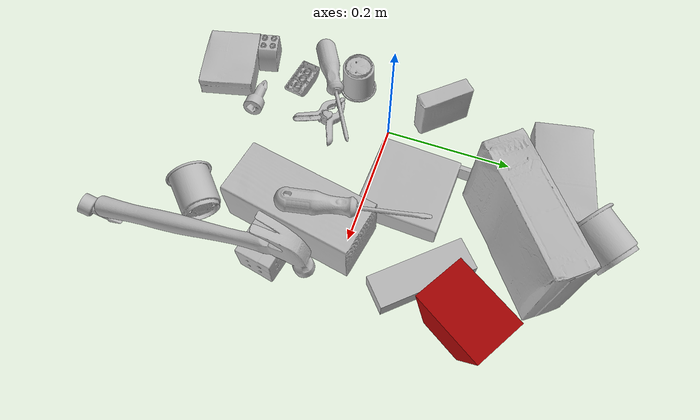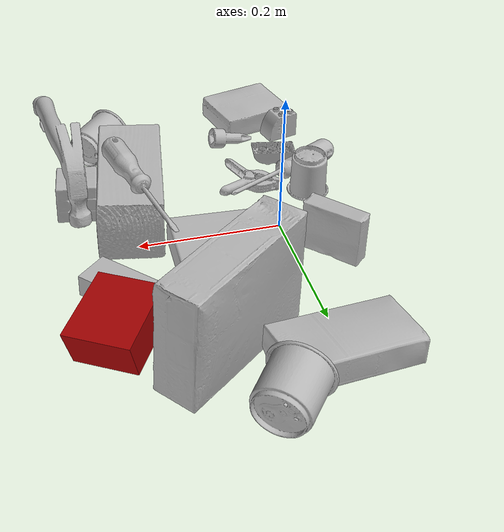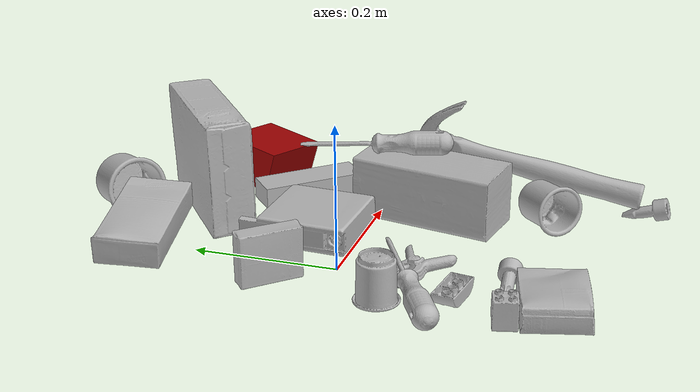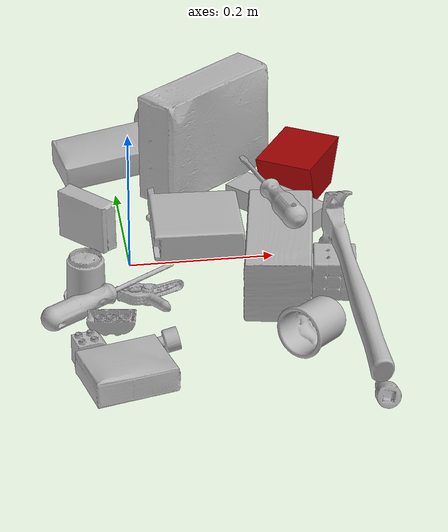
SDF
<sdf version="1.4">
  <world name="default">
    <light name="light1" type="point">
      <pose>0 0 1 0 0 0</pose>
      <diffuse>3 3 3 1</diffuse>
      <specular>3 3 3 1</specular>
    </light>
    <light name="light2" type="point">
      <pose>0 0.5 2 0 0 0</pose>
      <diffuse>1 1 1 1</diffuse>
      <specular>1 1 1 1</specular>
    </light>
    <light name="light3" type="point">
      <pose>0 0.5 2 0 0 0</pose>
      <diffuse>3 3 3 1</diffuse>
      <specular>3 3 3 1</specular>
    </light>
    <scene>
      <ambient>0.7 0.7 0.7</ambient>
    </scene>
    <model name="box21">
      <link name="link_box21">
        <collision name="default">
          <geometry>
            <mesh>
              <uri>model://cracker_box/collision_meshes/collision.obj</uri>
              <scale>1.0 1.0 1.0</scale>
            </mesh>
          </geometry>
          <surface>
            <friction>
              <ode>
                <mu>0.5</mu>
                <mu2>0.5</mu2>
              </ode>
            </friction>
          <contact>
        <ode>
            <max_vel>0</max_vel>
            <min_depth>0.0001</min_depth>
            <kp>1e8</kp>
        </ode>
    </contact></surface>
        </collision>
        <visual name="default">
          <geometry>
            <mesh>
              <uri>model://cracker_box/visual_meshes/visual.dae</uri>
              <scale>1.0 1.0 1.0</scale>
            </mesh>
          </geometry>
        </visual>
        <inertial>
          <mass>1.1849639415740967</mass>
          <pose>0.0009464144241064787 0.0002543424488976598 -0.0017029534792527556 -0.0003162077682631379 -0.011106487737543453 0.002546794536785776</pose>
          <inertia>
            <ixx>0.0030140192</ixx>
            <iyy>0.004976738</iyy>
            <izz>0.007102261</izz>
            <ixy>0</ixy>
            <ixz>0</ixz>
            <iyz>0</iyz>
          </inertia>
        </inertial>
      </link>
      <pose>0.13683950901031494 0.23127375543117523 0.08175767958164215 1.5452337408506513 0.009040273287730882 0.6793554831549087</pose>
    </model>
    <model name="box22">
      <link name="link_box22">
        <collision name="default">
          <geometry>
            <mesh>
              <uri>model://rubiks_cube/collision_meshes/collision.obj</uri>
              <scale>1.0 1.0 1.0</scale>
            </mesh>
          </geometry>
          <surface>
            <friction>
              <ode>
                <mu>0.5</mu>
                <mu2>0.5</mu2>
              </ode>
            </friction>
          <contact>
        <ode>
            <max_vel>0</max_vel>
            <min_depth>0.0001</min_depth>
            <kp>1e8</kp>
        </ode>
    </contact></surface>
        </collision>
        <visual name="default">
          <geometry>
            <mesh>
              <uri>model://rubiks_cube/visual_meshes/visual.dae</uri>
              <scale>1.0 1.0 1.0</scale>
            </mesh>
          </geometry>
        </visual>
        <inertial>
          <mass>0.10796652734279633</mass>
          <pose>2.6721041649580002e-05 5.2569666877388954e-05 -7.264316082000732e-06 -0.054672548620525036 -0.09813983330627576 -0.03445544186372042</pose>
          <inertia>
            <ixx>5.965876e-05</ixx>
            <iyy>5.9380527e-05</iyy>
            <izz>6.0153117e-05</izz>
            <ixy>0</ixy>
            <ixz>0</ixz>
            <iyz>0</iyz>
          </inertia>
        </inertial>
      </link>
      <pose>0.26626187562942505 -0.10348903387784958 0.029059574007987976 -3.1341264603700636 0.010894069910322096 -0.19514493605306718</pose>
    </model>
    <model name="box23">
      <link name="link_box23">
        <collision name="default">
          <geometry>
            <mesh>
              <uri>model://sugar_box/collision_meshes/collision.obj</uri>
              <scale>1.0 1.0 1.0</scale>
            </mesh>
          </geometry>
          <surface>
            <friction>
              <ode>
                <mu>0.5</mu>
                <mu2>0.5</mu2>
              </ode>
            </friction>
          <contact>
        <ode>
            <max_vel>0</max_vel>
            <min_depth>0.0001</min_depth>
            <kp>1e8</kp>
        </ode>
    </contact></surface>
        </collision>
        <visual name="default">
          <geometry>
            <mesh>
              <uri>model://sugar_box/visual_meshes/visual.dae</uri>
              <scale>1.0 1.0 1.0</scale>
            </mesh>
          </geometry>
        </visual>
        <inertial>
          <mass>0.8519012928009033</mass>
          <pose>0.0010343727190047503 3.8491099985549226e-05 -0.0003636480832938105 -0.00040462606756407727 0.0010506635218583888 0.002615378789044619</pose>
          <inertia>
            <ixx>0.00070980185</ixx>
            <iyy>0.0022942254</iyy>
            <izz>0.0027464617</izz>
            <ixy>0</ixy>
            <ixz>0</ixz>
            <iyz>0</iyz>
          </inertia>
        </inertial>
      </link>
      <pose>0.009078282862901688 0.27958041429519653 0.028310736641287804 3.1008046027964316 0.08326547200468341 -2.963363940777605</pose>
    </model>
    <model name="cup1">
      <link name="link_cup1">
        <collision name="default">
          <geometry>
            <mesh>
              <uri>model://b_cups/collision_meshes/collision.obj</uri>
              <scale>1.0 1.0 1.0</scale>
            </mesh>
          </geometry>
          <surface>
            <friction>
              <ode>
                <mu>0.5</mu>
                <mu2>0.5</mu2>
              </ode>
            </friction>
          <contact>
        <ode>
            <max_vel>0</max_vel>
            <min_depth>0.0001</min_depth>
            <kp>1e8</kp>
        </ode>
    </contact></surface>
        </collision>
        <visual name="default">
          <geometry>
            <mesh>
              <uri>model://b_cups/visual_meshes/visual.dae</uri>
              <scale>1.0 1.0 1.0</scale>
            </mesh>
          </geometry>
        </visual>
        <inertial>
          <mass>0.025879299268126488</mass>
          <pose>0.0005181999877095222 0.0018058597343042493 -0.0013381816679611802 0.11356295314662153 0.03872538879904025 -0.34569789869984097</pose>
          <inertia>
            <ixx>1.6939814e-05</ixx>
            <iyy>1.6618207e-05</iyy>
            <izz>1.4254532e-05</izz>
            <ixy>0</ixy>
            <ixz>0</ixz>
            <iyz>0</iyz>
          </inertia>
        </inertial>
      </link>
      <pose>-0.06741157919168472 -0.07491599023342133 0.032155126333236694 3.141586208690046 -5.87216150635835e-07 2.6325987427734225</pose>
    </model>
    <model name="cup2">
      <link name="link_cup2">
        <collision name="default">
          <geometry>
            <mesh>
              <uri>model://g_cups/collision_meshes/collision.obj</uri>
              <scale>1.0 1.0 1.0</scale>
            </mesh>
          </geometry>
          <surface>
            <friction>
              <ode>
                <mu>0.5</mu>
                <mu2>0.5</mu2>
              </ode>
            </friction>
          <contact>
        <ode>
            <max_vel>0</max_vel>
            <min_depth>0.0001</min_depth>
            <kp>1e8</kp>
        </ode>
    </contact></surface>
        </collision>
        <visual name="default">
          <geometry>
            <mesh>
              <uri>model://g_cups/visual_meshes/visual.dae</uri>
              <scale>1.0 1.0 1.0</scale>
            </mesh>
          </geometry>
        </visual>
        <inertial>
          <mass>0.06683293730020523</mass>
          <pose>-0.0007946278783492744 -4.206685844110325e-05 -0.002132937777787447 -0.21382591566164685 -0.31410327542238353 0.3112138520870617</pose>
          <inertia>
            <ixx>7.8009005e-05</ixx>
            <iyy>7.7743636e-05</iyy>
            <izz>8.080389e-05</izz>
            <ixy>0</ixy>
            <ixz>0</ixz>
            <iyz>0</iyz>
          </inertia>
        </inertial>
      </link>
      <pose>0.09995248168706894 0.3494326174259186 0.0401541106402874 -1.398165622704225 0.8639481043703163 2.587331238368174</pose>
    </model>
    <model name="box11">
      <link name="link_box11">
        <collision name="default">
          <geometry>
            <mesh>
              <uri>model://wood_block/collision_meshes/collision.obj</uri>
              <scale>1.0 1.0 1.0</scale>
            </mesh>
          </geometry>
          <surface>
            <friction>
              <ode>
                <mu>0.5</mu>
                <mu2>0.5</mu2>
              </ode>
            </friction>
          <contact>
        <ode>
            <max_vel>0</max_vel>
            <min_depth>0.0001</min_depth>
            <kp>1e8</kp>
        </ode>
    </contact></surface>
        </collision>
        <visual name="default">
          <geometry>
            <mesh>
              <uri>model://wood_block/visual_meshes/visual.dae</uri>
              <scale>1.0 1.0 1.0</scale>
            </mesh>
          </geometry>
        </visual>
        <inertial>
          <mass>0.9227498173713684</mass>
          <pose>-5.813315056002466e-06 -0.0005708094104193151 0.0002640858292579651 -0.05221074847543751 -0.005192695234575722 -0.00686137748598008</pose>
          <inertia>
            <ixx>0.001234779</ixx>
            <iyy>0.0039006667</iyy>
            <izz>0.0038860766</izz>
            <ixy>0</ixy>
            <ixz>0</ixz>
            <iyz>0</iyz>
          </inertia>
        </inertial>
      </link>
      <pose>0.1953711062669754 -0.0746496394276619 0.04570049047470093 1.5681445050445162 -0.006937324776994106 1.393193296071758</pose>
    </model>
    <model name="box12">
      <link name="link_box12">
        <collision name="default">
          <geometry>
            <mesh>
              <uri>model://pudding_box/collision_meshes/collision.obj</uri>
              <scale>1.0 1.0 1.0</scale>
            </mesh>
          </geometry>
          <surface>
            <friction>
              <ode>
                <mu>0.5</mu>
                <mu2>0.5</mu2>
              </ode>
            </friction>
          <contact>
        <ode>
            <max_vel>0</max_vel>
            <min_depth>0.0001</min_depth>
            <kp>1e8</kp>
        </ode>
    </contact></surface>
        </collision>
        <visual name="default">
          <geometry>
            <mesh>
              <uri>model://pudding_box/visual_meshes/visual.dae</uri>
              <scale>1.0 1.0 1.0</scale>
            </mesh>
          </geometry>
        </visual>
        <inertial>
          <mass>0.23326139152050018</mass>
          <pose>0.0004894821904599667 0.0008067885646596551 -0.0005188827635720372 0.0052131032034861725 -0.006603797335681708 0.02007982515858456</pose>
          <inertia>
            <ixx>0.00026369</ixx>
            <iyy>0.00017741251</iyy>
            <izz>0.00038940719</izz>
            <ixy>0</ixy>
            <ixz>0</ixz>
            <iyz>0</iyz>
          </inertia>
        </inertial>
      </link>
      <pose>-0.034139811992645264 -0.29098933935165405 0.01866610161960125 3.1353353810073537 -0.022161653098157017 -1.3259653052853042</pose>
    </model>
    <model name="box13">
      <link name="link_box13">
        <collision name="default">
          <geometry>
            <mesh>
              <uri>model://gelatin_box/collision_meshes/collision.obj</uri>
              <scale>1.0 1.0 1.0</scale>
            </mesh>
          </geometry>
          <surface>
            <friction>
              <ode>
                <mu>0.5</mu>
                <mu2>0.5</mu2>
              </ode>
            </friction>
          <contact>
        <ode>
            <max_vel>0</max_vel>
            <min_depth>0.0001</min_depth>
            <kp>1e8</kp>
        </ode>
    </contact></surface>
        </collision>
        <visual name="default">
          <geometry>
            <mesh>
              <uri>model://gelatin_box/visual_meshes/visual.dae</uri>
              <scale>1.0 1.0 1.0</scale>
            </mesh>
          </geometry>
        </visual>
        <inertial>
          <mass>0.0997389405965805</mass>
          <pose>0.0004319618456065655 0.00011156871187267825 -0.0003640321083366871 -0.001050372080915675 -0.004755817759010177 0.0164405576084854</pose>
          <inertia>
            <ixx>7.040755e-05</ixx>
            <iyy>5.0291743e-05</iyy>
            <izz>0.000107175976</izz>
            <ixy>0</ixy>
            <ixz>0</ixz>
            <iyz>0</iyz>
          </inertia>
        </inertial>
      </link>
      <pose>-0.05138615891337395 0.07356216013431549 0.036736223846673965 -0.5860887859934936 1.5473903341242026 0.1485084248488281</pose>
    </model>
    <model name="box14">
      <link name="link_box14">
        <collision name="default">
          <geometry>
            <mesh>
              <uri>model://jenga/collision_meshes/collision.obj</uri>
              <scale>1.0 1.0 1.0</scale>
            </mesh>
          </geometry>
          <surface>
            <friction>
              <ode>
                <mu>0.5</mu>
                <mu2>0.5</mu2>
              </ode>
            </friction>
          <contact>
        <ode>
            <max_vel>0</max_vel>
            <min_depth>0.0001</min_depth>
            <kp>1e8</kp>
        </ode>
    </contact></surface>
        </collision>
        <visual name="default">
          <geometry>
            <mesh>
              <uri>model://jenga/visual_meshes/visual.dae</uri>
              <scale>1.0 1.0 1.0</scale>
            </mesh>
          </geometry>
        </visual>
        <inertial>
          <mass>0.23366476595401764</mass>
          <pose>-2.502855807051674e-07 -0.0001025000965455547 -4.092339804628864e-05 0.0 -7.34215461761844e-07 0.0</pose>
          <inertia>
            <ixx>6.466071e-05</ixx>
            <iyy>0.0004381392</iyy>
            <izz>0.00046775083</izz>
            <ixy>0</ixy>
            <ixz>0</ixz>
            <iyz>0</iyz>
          </inertia>
        </inertial>
      </link>
      <pose>0.22482314705848694 0.11949235200881958 0.014999985694885254 3.141592634504665 1.6440268426656176e-07 2.303933335957622</pose>
    </model>
    <model name="cup15">
      <link name="link_cup15">
        <collision name="default">
          <geometry>
            <mesh>
              <uri>model://d_cups/collision_meshes/collision.obj</uri>
              <scale>1.0 1.0 1.0</scale>
            </mesh>
          </geometry>
          <surface>
            <friction>
              <ode>
                <mu>0.5</mu>
                <mu2>0.5</mu2>
              </ode>
            </friction>
          <contact>
        <ode>
            <max_vel>0</max_vel>
            <min_depth>0.0001</min_depth>
            <kp>1e8</kp>
        </ode>
    </contact></surface>
        </collision>
        <visual name="default">
          <geometry>
            <mesh>
              <uri>model://d_cups/visual_meshes/visual.dae</uri>
              <scale>1.0 1.0 1.0</scale>
            </mesh>
          </geometry>
        </visual>
        <inertial>
          <mass>0.05354860797524452</mass>
          <pose>0.000806806143373251 0.001911740517243743 -0.002266649389639497 0.240133395025133 -0.24708811164710584 0.5942101592185234</pose>
          <inertia>
            <ixx>4.4832785e-05</ixx>
            <iyy>4.470303e-05</iyy>
            <izz>4.0581297e-05</izz>
            <ixy>0</ixy>
            <ixz>0</ixz>
            <iyz>0</iyz>
          </inertia>
        </inertial>
      </link>
      <pose>0.21505117416381836 -0.23618467152118683 0.03248865529894829 -1.4814860235842588 -0.2972533597592588 2.3005830592396026</pose>
    </model>
    <model name="toy1">
      <link name="link_toy1">
        <collision name="default">
          <geometry>
            <mesh>
              <uri>model://d_toy_airplane/collision_meshes/collision.obj</uri>
              <scale>1.0 1.0 1.0</scale>
            </mesh>
          </geometry>
          <surface>
            <friction>
              <ode>
                <mu>0.5</mu>
                <mu2>0.5</mu2>
              </ode>
            </friction>
          <contact>
        <ode>
            <max_vel>0</max_vel>
            <min_depth>0.0001</min_depth>
            <kp>1e8</kp>
        </ode>
    </contact></surface>
        </collision>
        <visual name="default">
          <geometry>
            <mesh>
              <uri>model://d_toy_airplane/visual_meshes/visual.dae</uri>
              <scale>1.0 1.0 1.0</scale>
            </mesh>
          </geometry>
        </visual>
        <inertial>
          <mass>0.01055214088410139</mass>
          <pose>9.410294296685606e-05 -5.809328649775125e-05 -0.011728094890713692 0.00026701540047293157 0.004678982739479609 0.5194739606880012</pose>
          <inertia>
            <ixx>3.1633276e-06</ixx>
            <iyy>3.1657132e-06</iyy>
            <izz>9.55029e-07</izz>
            <ixy>0</ixy>
            <ixz>0</ixz>
            <iyz>0</iyz>
          </inertia>
        </inertial>
      </link>
      <pose>0.007323484867811203 -0.22516506910324097 0.0120384581387043 -1.8698584404817034 0.8596818870152134 1.4323064444406222</pose>
    </model>
    <model name="toy2">
      <link name="link_toy2">
        <collision name="default">
          <geometry>
            <mesh>
              <uri>model://d_lego_duplo/collision_meshes/collision.obj</uri>
              <scale>1.0 1.0 1.0</scale>
            </mesh>
          </geometry>
          <surface>
            <friction>
              <ode>
                <mu>0.5</mu>
                <mu2>0.5</mu2>
              </ode>
            </friction>
          <contact>
        <ode>
            <max_vel>0</max_vel>
            <min_depth>0.0001</min_depth>
            <kp>1e8</kp>
        </ode>
    </contact></surface>
        </collision>
        <visual name="default">
          <geometry>
            <mesh>
              <uri>model://d_lego_duplo/visual_meshes/visual.dae</uri>
              <scale>1.0 1.0 1.0</scale>
            </mesh>
          </geometry>
        </visual>
        <inertial>
          <mass>0.039816875010728836</mass>
          <pose>0.0028305640444159508 0.00016366131603717804 0.000858980929479003 0.08010950238605453 -0.3835521959243733 0.0010296761363168562</pose>
          <inertia>
            <ixx>7.70796e-06</ixx>
            <iyy>1.0939688e-05</iyy>
            <izz>1.0549791e-05</izz>
            <ixy>0</ixy>
            <ixz>0</ixz>
            <iyz>0</iyz>
          </inertia>
        </inertial>
      </link>
      <pose>-0.07341291010379791 -0.238082617521286 0.021740566939115524 3.449092739221226e-05 4.890546420883809e-06 -2.898874072265709</pose>
    </model>
    <model name="toy3">
      <link name="link_toy3">
        <collision name="default">
          <geometry>
            <mesh>
              <uri>model://nine_hole_peg_test/collision_meshes/collision.obj</uri>
              <scale>1.0 1.0 1.0</scale>
            </mesh>
          </geometry>
          <surface>
            <friction>
              <ode>
                <mu>0.5</mu>
                <mu2>0.5</mu2>
              </ode>
            </friction>
          <contact>
        <ode>
            <max_vel>0</max_vel>
            <min_depth>0.0001</min_depth>
            <kp>1e8</kp>
        </ode>
    </contact></surface>
        </collision>
        <visual name="default">
          <geometry>
            <mesh>
              <uri>model://nine_hole_peg_test/visual_meshes/visual.dae</uri>
              <scale>1.0 1.0 1.0</scale>
            </mesh>
          </geometry>
        </visual>
        <inertial>
          <mass>0.7048692107200623</mass>
          <pose>-0.0046173869632184505 -0.009647614322602749 2.6460689696250483e-05 -0.0014666794682547425 0.0007194190753660851 -0.6342416580414534</pose>
          <inertia>
            <ixx>0.0011021789</ixx>
            <iyy>0.0010290928</iyy>
            <izz>0.0019313421</izz>
            <ixy>0</ixy>
            <ixz>0</ixz>
            <iyz>0</iyz>
          </inertia>
        </inertial>
      </link>
      <pose>0.09526868909597397 0.07333166152238846 0.020791009068489075 3.1415926534873404 -1.4529914267214949e-08 3.091588477352526</pose>
    </model>
    <model name="toy4">
      <link name="link_toy4">
        <collision name="default">
          <geometry>
            <mesh>
              <uri>model://a_lego_duplo/collision_meshes/collision.obj</uri>
              <scale>1.0 1.0 1.0</scale>
            </mesh>
          </geometry>
          <surface>
            <friction>
              <ode>
                <mu>0.5</mu>
                <mu2>0.5</mu2>
              </ode>
            </friction>
          <contact>
        <ode>
            <max_vel>0</max_vel>
            <min_depth>0.0001</min_depth>
            <kp>1e8</kp>
        </ode>
    </contact></surface>
        </collision>
        <visual name="default">
          <geometry>
            <mesh>
              <uri>model://a_lego_duplo/visual_meshes/visual.dae</uri>
              <scale>1.0 1.0 1.0</scale>
            </mesh>
          </geometry>
        </visual>
        <inertial>
          <mass>0.021006127819418907</mass>
          <pose>-0.00011337678006384522 0.00018517556600272655 0.0003692602913361043 -0.014116980161978756 -0.00012565077681184441 6.142327078429463e-05</pose>
          <inertia>
            <ixx>2.6931523e-06</ixx>
            <iyy>6.033251e-06</iyy>
            <izz>7.473524e-06</izz>
            <ixy>0</ixy>
            <ixz>0</ixz>
            <iyz>0</iyz>
          </inertia>
        </inertial>
      </link>
      <pose>-0.041721343994140625 -0.16539831459522247 0.01212474424391985 -3.141330026703025 -0.01554936597369226 -0.16336519351003326</pose>
    </model>
    <model name="toy5">
      <link name="link_toy5">
        <collision name="default">
          <geometry>
            <mesh>
              <uri>model://e_toy_airplane/collision_meshes/collision.obj</uri>
              <scale>1.0 1.0 1.0</scale>
            </mesh>
          </geometry>
          <surface>
            <friction>
              <ode>
                <mu>0.5</mu>
                <mu2>0.5</mu2>
              </ode>
            </friction>
          <contact>
        <ode>
            <max_vel>0</max_vel>
            <min_depth>0.0001</min_depth>
            <kp>1e8</kp>
        </ode>
    </contact></surface>
        </collision>
        <visual name="default">
          <geometry>
            <mesh>
              <uri>model://e_toy_airplane/visual_meshes/visual.dae</uri>
              <scale>1.0 1.0 1.0</scale>
            </mesh>
          </geometry>
        </visual>
        <inertial>
          <mass>0.02451101876795292</mass>
          <pose>0.00011740468471543863 -2.248291639261879e-05 -0.011187203228473663 0.00551850103187323 0.009228285956806933 0.150416364683818</pose>
          <inertia>
            <ixx>7.481042e-06</ixx>
            <iyy>7.4045165e-06</iyy>
            <izz>2.2483475e-06</izz>
            <ixy>0</ixy>
            <ixz>0</ixz>
            <iyz>0</iyz>
          </inertia>
        </inertial>
      </link>
      <pose>0.28219857811927795 -0.3643616735935211 0.010725824162364006 -2.6002757131548213 1.244904770648724 -1.0315754839438547</pose>
    </model>
    <model name="toy6">
      <link name="link_toy6">
        <collision name="default">
          <geometry>
            <mesh>
              <uri>model://prism/collision_meshes/collision.obj</uri>
              <scale>1.0 1.0 1.0</scale>
            </mesh>
          </geometry>
          <surface>
            <friction>
              <ode>
                <mu>0.5</mu>
                <mu2>0.5</mu2>
              </ode>
            </friction>
          <contact>
        <ode>
            <max_vel>0</max_vel>
            <min_depth>0.0001</min_depth>
            <kp>1e8</kp>
        </ode>
    </contact></surface>
        </collision>
        <visual name="default">
          <geometry>
            <mesh>
              <uri>model://prism/visual_meshes/visual.dae</uri>
              <scale>1.0 1.0 1.0</scale>
            </mesh>
          </geometry>
        </visual>
        <inertial>
          <mass>0.639074981212616</mass>
          <pose>-9.85359656624496e-05 -4.96157269935793e-07 -0.003386910306289792 0.0 0.006559180766136186 0.0</pose>
          <inertia>
            <ixx>0.0005767573</ixx>
            <iyy>0.0006970186</iyy>
            <izz>0.0008537644</izz>
            <ixy>0</ixy>
            <ixz>0</ixz>
            <iyz>0</iyz>
          </inertia>
        </inertial>
      </link>
      <pose>0.2666991651058197 0.19231578707695007 0.031446874141693115 3.141592642209632 0.01664676142910908 1.025832494743992</pose>
    </model>
    <model name="hardware1">
      <link name="link_hardware1">
        <collision name="default">
          <geometry>
            <mesh>
              <uri>model://medium_clamp/collision_meshes/collision.obj</uri>
              <scale>1.0 1.0 1.0</scale>
            </mesh>
          </geometry>
          <surface>
            <friction>
              <ode>
                <mu>0.5</mu>
                <mu2>0.5</mu2>
              </ode>
            </friction>
          <contact>
        <ode>
            <max_vel>0</max_vel>
            <min_depth>0.0001</min_depth>
            <kp>1e8</kp>
        </ode>
    </contact></surface>
        </collision>
        <visual name="default">
          <geometry>
            <mesh>
              <uri>model://medium_clamp/visual_meshes/visual.dae</uri>
              <scale>1.0 1.0 1.0</scale>
            </mesh>
          </geometry>
        </visual>
        <inertial>
          <mass>0.01437164656817913</mass>
          <pose>0.005390993785113096 0.00039532355731353164 -0.0001222158025484532 -0.001226922255807767 0.0025845058861846287 0.038207728721457376</pose>
          <inertia>
            <ixx>3.9153533e-06</ixx>
            <iyy>5.697947e-06</iyy>
            <izz>8.776544e-06</izz>
            <ixy>0</ixy>
            <ixz>0</ixz>
            <iyz>0</iyz>
          </inertia>
        </inertial>
      </link>
      <pose>0.01528062392026186 -0.10263190418481827 0.013541639782488346 0.07593002063265834 0.08568977759969529 2.7794984766382953</pose>
    </model>
    <model name="hardware2">
      <link name="link_hardware2">
        <collision name="default">
          <geometry>
            <mesh>
              <uri>model://hammer/collision_meshes/collision.obj</uri>
              <scale>1.0 1.0 1.0</scale>
            </mesh>
          </geometry>
          <surface>
            <friction>
              <ode>
                <mu>0.5</mu>
                <mu2>0.5</mu2>
              </ode>
            </friction>
          <contact>
        <ode>
            <max_vel>0</max_vel>
            <min_depth>0.0001</min_depth>
            <kp>1e8</kp>
        </ode>
    </contact></surface>
        </collision>
        <visual name="default">
          <geometry>
            <mesh>
              <uri>model://hammer/visual_meshes/visual.dae</uri>
              <scale>1.0 1.0 1.0</scale>
            </mesh>
          </geometry>
        </visual>
        <inertial>
          <mass>0.29233166575431824</mass>
          <pose>0.009415771812200546 -0.011892357841134071 -0.0001235063245985657 0.02315535385536088 -0.004792164028838156 -0.01276032390705471</pose>
          <inertia>
            <ixx>0.0001252207</ixx>
            <iyy>0.003393116</iyy>
            <izz>0.0034903311</izz>
            <ixy>0</ixy>
            <ixz>0</ixz>
            <iyz>0</iyz>
          </inertia>
        </inertial>
      </link>
      <pose>0.2763572037220001 -0.18583226203918457 0.07309575378894806 1.548530496633045 -0.16900579836985302 1.6044124442651408</pose>
    </model>
    <model name="hardware3">
      <link name="link_hardware3">
        <collision name="default">
          <geometry>
            <mesh>
              <uri>model://phillips_screwdriver/collision_meshes/collision.obj</uri>
              <scale>1.0 1.0 1.0</scale>
            </mesh>
          </geometry>
          <surface>
            <friction>
              <ode>
                <mu>0.5</mu>
                <mu2>0.5</mu2>
              </ode>
            </friction>
          <contact>
        <ode>
            <max_vel>0</max_vel>
            <min_depth>0.0001</min_depth>
            <kp>1e8</kp>
        </ode>
    </contact></surface>
        </collision>
        <visual name="default">
          <geometry>
            <mesh>
              <uri>model://phillips_screwdriver/visual_meshes/visual.dae</uri>
              <scale>1.0 1.0 1.0</scale>
            </mesh>
          </geometry>
        </visual>
        <inertial>
          <mass>0.11685379594564438</mass>
          <pose>-0.04777182638645172 0.0010362302418798208 -0.0004555549821816385 -0.15721778382646787 0.005850995328295584 -0.002156740385256481</pose>
          <inertia>
            <ixx>1.3729124e-05</ixx>
            <iyy>0.00017213916</iyy>
            <izz>0.00017228544</izz>
            <ixy>0</ixy>
            <ixz>0</ixz>
            <iyz>0</iyz>
          </inertia>
        </inertial>
      </link>
      <pose>-0.03991549834609032 -0.10739278793334961 0.022447606548666954 0.07493444523286467 -0.0656763799874452 0.5253052773423583</pose>
    </model>
    <model name="hardware4">
      <link name="link_hardware4">
        <collision name="default">
          <geometry>
            <mesh>
              <uri>model://flat_screwdriver/collision_meshes/collision.obj</uri>
              <scale>1.0 1.0 1.0</scale>
            </mesh>
          </geometry>
          <surface>
            <friction>
              <ode>
                <mu>0.5</mu>
                <mu2>0.5</mu2>
              </ode>
            </friction>
          <contact>
        <ode>
            <max_vel>0</max_vel>
            <min_depth>0.0001</min_depth>
            <kp>1e8</kp>
        </ode>
    </contact></surface>
        </collision>
        <visual name="default">
          <geometry>
            <mesh>
              <uri>model://flat_screwdriver/visual_meshes/visual.dae</uri>
              <scale>1.0 1.0 1.0</scale>
            </mesh>
          </geometry>
        </visual>
        <inertial>
          <mass>0.10915977507829666</mass>
          <pose>-0.0489187091588974 -0.0006576799787580967 -0.000614091579336673 -0.5614402636475724 -0.003233725963840683 0.006982283174401888</pose>
          <inertia>
            <ixx>1.2897148e-05</ixx>
            <iyy>0.0001637322</iyy>
            <izz>0.00016365637</izz>
            <ixy>0</ixy>
            <ixz>0</ixz>
            <iyz>0</iyz>
          </inertia>
        </inertial>
      </link>
      <pose>0.19522801041603088 0.004109278321266174 0.1042291522026062 2.8678361650223154 0.038967068776068196 1.7950218648297886</pose>
    </model>
  <physics type="ode">
      <max_contacts>50</max_contacts>
      <ode>
        <solver>
          <type>quick</type>
          <iters>75</iters>
        </solver>
        <constraints>
          <contact_max_correcting_vel>0</contact_max_correcting_vel>
          <contact_surface_layer>0</contact_surface_layer>
        </constraints>
      </ode>
    </physics></world>
</sdf>
